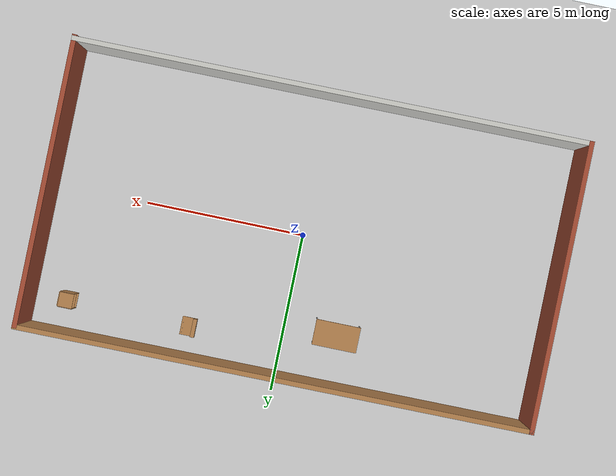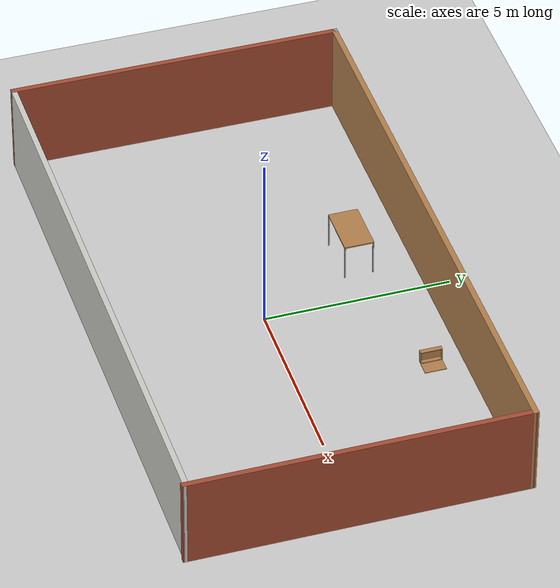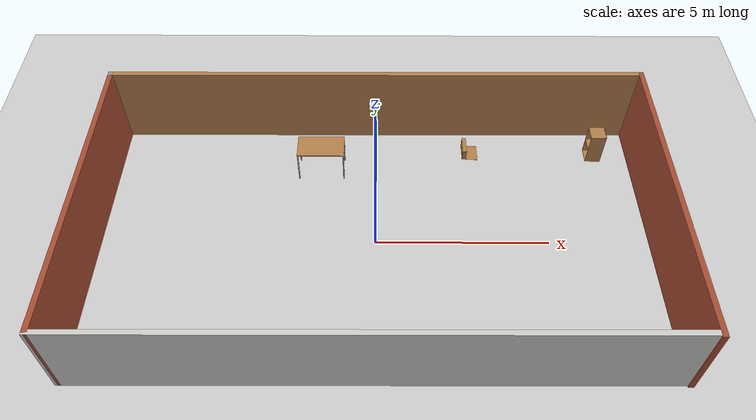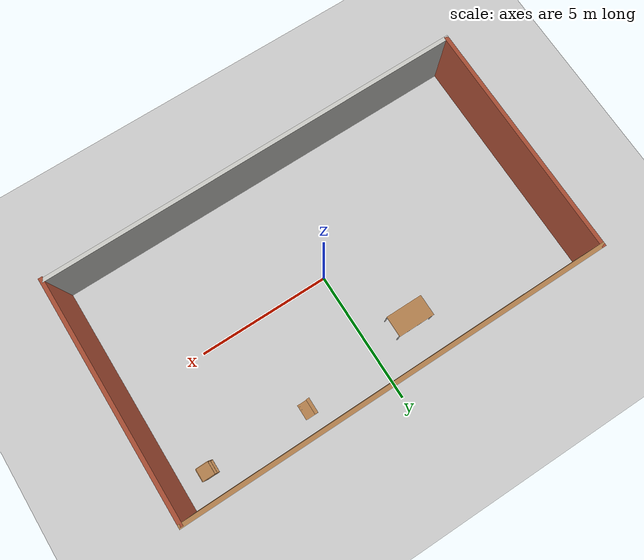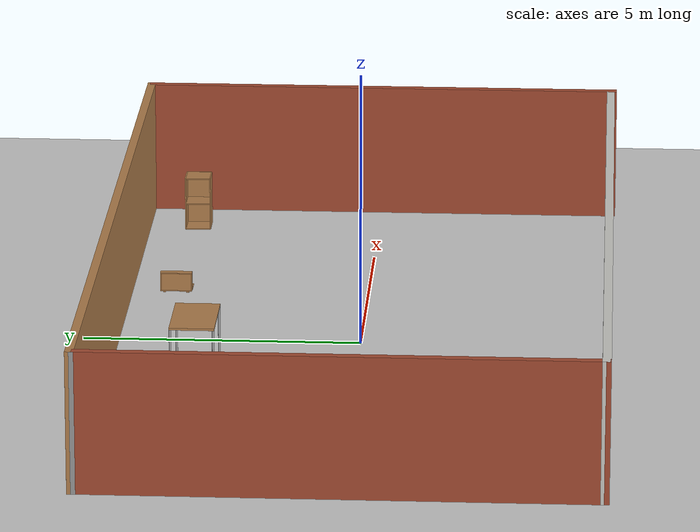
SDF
<sdf version="1.6">
 <world name="default">
  <light name="sun" type="directional">
   <pose>0 0 15 0 -0 0</pose>
   <diffuse>1 1 1 1</diffuse>
   <specular>0.1 0.1 0.1 1</specular>
   <attenuation>
    <range>1000</range>
    <constant>0.9</constant>
    <linear>0.01</linear>
    <quadratic>0.001</quadratic>
   </attenuation>
   <direction>-0.5 0.5 -1</direction>
  </light>
  <model name="ground_plane">
   <static>1</static>
   <link name="link">
    <collision name="collision">
     <geometry><plane><normal>0 0 1</normal><size>100 100</size></plane></geometry>
     <surface><friction><ode><mu>100</mu><mu2>50</mu2></ode></friction></surface>
    </collision>
    <visual name="visual">
     <cast_shadows>0</cast_shadows>
     <geometry><plane><normal>0 0 1</normal><size>100 100</size></plane></geometry>
     <material>
      <script><uri>file://media/materials/scripts/gazebo.material</uri><name>Gazebo/Grey</name></script>
     </material>
    </visual>
   </link>
  </model>
  <gravity>0 0 -9.8</gravity>
  <magnetic_field>6e-06 2.3e-05 -4.2e-05</magnetic_field>
  <atmosphere type="adiabatic"/>
  <physics name="default_physics" default="0" type="ode">
   <max_step_size>0.001</max_step_size>
   <real_time_factor>1</real_time_factor>
   <real_time_update_rate>1000</real_time_update_rate>
  </physics>
  <scene><ambient>0.4 0.4 0.4 1</ambient><background>0.7 0.7 0.7 1</background><shadows>1</shadows></scene>
  <spherical_coordinates>
   <surface_model>EARTH_WGS84</surface_model>
   <latitude_deg>0</latitude_deg>
   <longitude_deg>0</longitude_deg>
   <elevation>0</elevation>
   <heading_deg>0</heading_deg>
  </spherical_coordinates>
  <model name="my_cafe">
   <link name="Wall_0">
    <collision name="Wall_0_Collision">
     <geometry><box><size>9 0.15 2.5</size></box></geometry>
     <pose>0 0 1.25 0 -0 0</pose>
    </collision>
    <visual name="Wall_0_Visual">
     <pose>0 0 1.25 0 -0 0</pose>
     <geometry><box><size>9 0.15 2.5</size></box></geometry>
     <material>
      <script><uri>file://media/materials/scripts/gazebo.material</uri><name>Gazebo/Bricks</name></script>
      <ambient>0.435294 0.796078 0.67451 1</ambient>
     </material>
    </visual>
    <pose>-7.93402 -0.031371 0 0 0 -1.5708</pose>
   </link>
   <link name="Wall_1">
    <collision name="Wall_1_Collision">
     <geometry><box><size>16.0181 0.15 2.5</size></box></geometry>
     <pose>0 0 1.25 0 -0 0</pose>
    </collision>
    <visual name="Wall_1_Visual">
     <pose>0 0 1.25 0 -0 0</pose>
     <geometry><box><size>16.0181 0.15 2.5</size></box></geometry>
     <material>
      <script><uri>file://media/materials/scripts/gazebo.material</uri><name>Gazebo/CeilingTiled</name></script>
      <ambient>0.996078 0.47451 0.0196078 1</ambient>
     </material>
    </visual>
    <pose>0 -4.425 0 0 -0 0.003954</pose>
   </link>
   <link name="Wall_2">
    <collision name="Wall_2_Collision">
     <geometry><box><size>9 0.15 2.5</size></box></geometry>
     <pose>0 0 1.25 0 -0 0</pose>
    </collision>
    <visual name="Wall_2_Visual">
     <pose>0 0 1.25 0 -0 0</pose>
     <geometry><box><size>9 0.15 2.5</size></box></geometry>
     <material>
      <script><uri>file://media/materials/scripts/gazebo.material</uri><name>Gazebo/Bricks</name></script>
      <ambient>0.435294 0.796078 0.67451 1</ambient>
     </material>
    </visual>
    <pose>7.93002 -0.009315 0 0 -0 1.5717</pose>
   </link>
   <link name="Wall_3">
    <collision name="Wall_3_Collision">
     <geometry><box><size>16.0101 0.15 2.5</size></box></geometry>
     <pose>0 0 1.25 0 -0 0</pose>
    </collision>
    <visual name="Wall_3_Visual">
     <pose>0 0 1.25 0 -0 0</pose>
     <geometry><box><size>16.0101 0.15 2.5</size></box></geometry>
     <material>
      <script><uri>file://media/materials/scripts/gazebo.material</uri><name>Gazebo/Wood</name></script>
      <ambient>0.435294 0.796078 0.67451 1</ambient>
     </material>
    </visual>
    <pose>-0.004 4.425 0 0 0 -3.13764</pose>
   </link>
   <link name="Wall_4">
    <collision name="Wall_4_Collision">
     <geometry><box><size>0.15 0.15 2.5</size></box></geometry>
     <pose>0 0 1.25 0 -0 0</pose>
    </collision>
    <visual name="Wall_4_Visual">
     <pose>0 0 1.25 0 -0 0</pose>
     <geometry><box><size>0.15 0.15 2.5</size></box></geometry>
     <material>
      <script><uri>file://media/materials/scripts/gazebo.material</uri><name>Gazebo/Grey</name></script>
      <ambient>1 1 1 1</ambient>
     </material>
    </visual>
    <pose>-7.93402 4.39363 0 0 -0 0</pose>
   </link>
   <static>1</static>
  </model>
  <model name="wooden_case">
   <link name="base">
    <pose>0 0 0.024 0 -0 0</pose>
    <inertial>
     <pose>-0.022184 0 0.171592 0 -0 0</pose>
     <mass>3.96264</mass>
     <inertia>
      <ixx>0.213536</ixx>
      <ixy>0</ixy>
      <ixz>0.000779377</ixz>
      <iyy>0.0708943</iyy>
      <iyz>0</iyz>
      <izz>0.154604</izz>
     </inertia>
    </inertial>
    <collision name="collision_back">
     <pose>-0.053975 0 0.1778 0 -0 0</pose>
     <geometry><box><size>0.01905 0.5461 0.3175</size></box></geometry>
     <surface>
      <contact>
       <poissons_ratio>0.347</poissons_ratio>
       <elastic_modulus>8.8e+09</elastic_modulus>
       <ode><kp>100000</kp><kd>100</kd><max_vel>100</max_vel><min_depth>0.001</min_depth></ode>
      </contact>
      <friction>
       <torsional>
        <coefficient>1</coefficient>
        <use_patch_radius>0</use_patch_radius>
        <surface_radius>0.01</surface_radius>
       </torsional>
      </friction>
     </surface>
    </collision>
    <visual name="visual_back">
     <pose>-0.053975 0 0.1778 0 -0 0</pose>
     <geometry><box><size>0.01905 0.5461 0.3175</size></box></geometry>
     <material>
      <script><uri>file://media/materials/scripts/gazebo.material</uri><name>Gazebo/Wood</name></script>
     </material>
    </visual>
    <collision name="collision_bottom">
     <pose>0 0 0.009525 0 -0 0</pose>
     <geometry><box><size>0.127 0.5842 0.01905</size></box></geometry>
     <surface>
      <contact>
       <poissons_ratio>0.347</poissons_ratio>
       <elastic_modulus>8.8e+09</elastic_modulus>
       <ode><kp>100000</kp><kd>100</kd><max_vel>100</max_vel><min_depth>0.001</min_depth></ode>
      </contact>
      <friction>
       <torsional>
        <coefficient>1</coefficient>
        <use_patch_radius>0</use_patch_radius>
        <surface_radius>0.01</surface_radius>
       </torsional>
      </friction>
     </surface>
    </collision>
    <visual name="visual_bottom">
     <pose>0 0 0.009525 0 -0 0</pose>
     <geometry><box><size>0.127 0.5842 0.01905</size></box></geometry>
     <material>
      <script><uri>file://media/materials/scripts/gazebo.material</uri><name>Gazebo/Wood</name></script>
     </material>
    </visual>
    <collision name="collision_top">
     <pose>0 0 0.346075 0 -0 0</pose>
     <geometry><box><size>0.127 0.5842 0.01905</size></box></geometry>
     <surface>
      <contact>
       <poissons_ratio>0.347</poissons_ratio>
       <elastic_modulus>8.8e+09</elastic_modulus>
       <ode><kp>100000</kp><kd>100</kd><max_vel>100</max_vel><min_depth>0.001</min_depth></ode>
      </contact>
      <friction>
       <torsional>
        <coefficient>1</coefficient>
        <use_patch_radius>0</use_patch_radius>
        <surface_radius>0.01</surface_radius>
       </torsional>
      </friction>
     </surface>
    </collision>
    <visual name="visual_top">
     <pose>0 0 0.346075 0 -0 0</pose>
     <geometry><box><size>0.127 0.5842 0.01905</size></box></geometry>
     <material>
      <script><uri>file://media/materials/scripts/gazebo.material</uri><name>Gazebo/Wood</name></script>
     </material>
    </visual>
    <collision name="collision_left">
     <pose>0 -0.282575 0.1778 0 -0 0</pose>
     <geometry><box><size>0.127 0.01905 0.3175</size></box></geometry>
     <surface>
      <contact>
       <poissons_ratio>0.347</poissons_ratio>
       <elastic_modulus>8.8e+09</elastic_modulus>
       <ode><kp>100000</kp><kd>100</kd><max_vel>100</max_vel><min_depth>0.001</min_depth></ode>
      </contact>
      <friction>
       <torsional>
        <coefficient>1</coefficient>
        <use_patch_radius>0</use_patch_radius>
        <surface_radius>0.01</surface_radius>
       </torsional>
      </friction>
     </surface>
    </collision>
    <visual name="visual_left">
     <pose>0 -0.282575 0.1778 0 -0 0</pose>
     <geometry><box><size>0.127 0.01905 0.3175</size></box></geometry>
     <material>
      <script><uri>file://media/materials/scripts/gazebo.material</uri><name>Gazebo/Wood</name></script>
     </material>
    </visual>
    <collision name="collision_right">
     <pose>0 0.282575 0.1778 0 -0 0</pose>
     <geometry><box><size>0.127 0.01905 0.3175</size></box></geometry>
     <surface>
      <contact>
       <poissons_ratio>0.347</poissons_ratio>
       <elastic_modulus>8.8e+09</elastic_modulus>
       <ode><kp>100000</kp><kd>100</kd><max_vel>100</max_vel><min_depth>0.001</min_depth></ode>
      </contact>
      <friction>
       <torsional>
        <coefficient>1</coefficient>
        <use_patch_radius>0</use_patch_radius>
        <surface_radius>0.01</surface_radius>
       </torsional>
      </friction>
     </surface>
    </collision>
    <visual name="visual_right">
     <pose>0 0.282575 0.1778 0 -0 0</pose>
     <geometry><box><size>0.127 0.01905 0.3175</size></box></geometry>
     <material>
      <script><uri>file://media/materials/scripts/gazebo.material</uri><name>Gazebo/Wood</name></script>
     </material>
    </visual>
    <collision name="collision_block_left">
     <pose>0.0095 -0.2151 -0.012 0 -0 0</pose>
     <geometry><box><size>0.108 0.05 0.024</size></box></geometry>
     <surface>
      <contact>
       <poissons_ratio>0.347</poissons_ratio>
       <elastic_modulus>8.8e+09</elastic_modulus>
       <ode><kp>100000</kp><kd>100</kd><max_vel>100</max_vel><min_depth>0.001</min_depth></ode>
      </contact>
      <friction>
       <torsional>
        <coefficient>1</coefficient>
        <use_patch_radius>0</use_patch_radius>
        <surface_radius>0.01</surface_radius>
       </torsional>
      </friction>
     </surface>
    </collision>
    <visual name="visual_block_left">
     <pose>0.0095 -0.2151 -0.012 0 -0 0</pose>
     <geometry><box><size>0.108 0.05 0.024</size></box></geometry>
     <material>
      <script><uri>file://media/materials/scripts/gazebo.material</uri><name>Gazebo/Wood</name></script>
     </material>
    </visual>
    <collision name="collision_block_right">
     <pose>0.0095 0.2151 -0.012 0 -0 0</pose>
     <geometry><box><size>0.108 0.05 0.024</size></box></geometry>
     <surface>
      <contact>
       <poissons_ratio>0.347</poissons_ratio>
       <elastic_modulus>8.8e+09</elastic_modulus>
       <ode><kp>100000</kp><kd>100</kd><max_vel>100</max_vel><min_depth>0.001</min_depth></ode>
      </contact>
      <friction>
       <torsional>
        <coefficient>1</coefficient>
        <use_patch_radius>0</use_patch_radius>
        <surface_radius>0.01</surface_radius>
       </torsional>
      </friction>
     </surface>
    </collision>
    <visual name="visual_block_right">
     <pose>0.0095 0.2151 -0.012 0 -0 0</pose>
     <geometry><box><size>0.108 0.05 0.024</size></box></geometry>
     <material>
      <script><uri>file://media/materials/scripts/gazebo.material</uri><name>Gazebo/Wood</name></script>
     </material>
    </visual>
   </link>
   <link name="lid">
    <pose>0.243775 0 0.009525 0 -0 0</pose>
    <inertial>
     <mass>1.97874</mass>
     <inertia>
      <ixx>0.0563367</ixx>
      <ixy>0</ixy>
      <ixz>0</ixz>
      <iyy>0.020911</iyy>
      <iyz>0</iyz>
      <izz>0.0771281</izz>
     </inertia>
    </inertial>
    <collision name="collision">
     <geometry><box><size>0.3556 0.5842 0.01905</size></box></geometry>
     <surface>
      <contact>
       <poissons_ratio>0.347</poissons_ratio>
       <elastic_modulus>8.8e+09</elastic_modulus>
       <ode><kp>100000</kp><kd>100</kd><max_vel>100</max_vel><min_depth>0.001</min_depth></ode>
      </contact>
      <friction>
       <torsional>
        <coefficient>1</coefficient>
        <use_patch_radius>0</use_patch_radius>
        <surface_radius>0.01</surface_radius>
       </torsional>
      </friction>
     </surface>
    </collision>
    <visual name="visual">
     <geometry><box><size>0.3556 0.5842 0.01905</size></box></geometry>
     <material>
      <script><uri>file://media/materials/scripts/gazebo.material</uri><name>Gazebo/Wood</name></script>
     </material>
    </visual>
    <visual name="tee_nut_1">
     <pose>0.122 -0.216 0 0 -0 0</pose>
     <geometry><cylinder><radius>0.00635</radius><length>0.0192405</length></cylinder></geometry>
     <material>
      <script><uri>file://media/materials/scripts/gazebo.material</uri><name>Gazebo/Grey</name></script>
     </material>
    </visual>
    <visual name="tee_nut_2">
     <pose>0.122 -0.088 0 0 -0 0</pose>
     <geometry><cylinder><radius>0.00635</radius><length>0.0192405</length></cylinder></geometry>
     <material>
      <script><uri>file://media/materials/scripts/gazebo.material</uri><name>Gazebo/Grey</name></script>
     </material>
    </visual>
    <visual name="tee_nut_3">
     <pose>0.122 0.088 0 0 -0 0</pose>
     <geometry><cylinder><radius>0.00635</radius><length>0.0192405</length></cylinder></geometry>
     <material>
      <script><uri>file://media/materials/scripts/gazebo.material</uri><name>Gazebo/Grey</name></script>
     </material>
    </visual>
    <visual name="tee_nut_4">
     <pose>0.122 0.216 0 0 -0 0</pose>
     <geometry><cylinder><radius>0.00635</radius><length>0.0192405</length></cylinder></geometry>
     <material>
      <script><uri>file://media/materials/scripts/gazebo.material</uri><name>Gazebo/Grey</name></script>
     </material>
    </visual>
   </link>
   <joint name="lid_hinge" type="revolute">
    <pose>-0.1778 0 0.01905 0 -0 0</pose>
    <parent>base</parent>
    <child>lid</child>
    <axis>
     <xyz>0 1 0</xyz>
     <limit><upper>0.523599</upper><lower>-1.5708</lower></limit>
     <use_parent_model_frame>0</use_parent_model_frame>
     <dynamics><spring_reference>0</spring_reference><spring_stiffness>0</spring_stiffness></dynamics>
    </axis>
   </joint>
   <pose>2.76973 3.55891 -0.001057 0 -0.000429 0</pose>
  </model>
  <model name="table">
   <static>0</static>
   <link name="link">
    <collision name="surface">
     <pose>0 0 1 0 -0 0</pose>
     <geometry><box><size>1.5 0.8 0.03</size></box></geometry>
     <surface><friction><ode><mu>0.6</mu><mu2>0.6</mu2></ode></friction></surface>
    </collision>
    <visual name="visual1">
     <pose>0 0 1 0 -0 0</pose>
     <geometry><box><size>1.4 0.8 0.04</size></box></geometry>
     <material>
      <script><uri>file://media/materials/scripts/gazebo.material</uri><name>Gazebo/Wood</name></script>
     </material>
    </visual>
    <collision name="front_left_leg">
     <pose>0.68 0.38 0.5 0 -0 0</pose>
     <geometry><cylinder><radius>0.02</radius><length>1</length></cylinder></geometry>
    </collision>
    <visual name="front_left_leg">
     <pose>0.68 0.38 0.5 0 -0 0</pose>
     <geometry><cylinder><radius>0.02</radius><length>1</length></cylinder></geometry>
     <material>
      <script><uri>file://media/materials/scripts/gazebo.material</uri><name>Gazebo/Grey</name></script>
     </material>
    </visual>
    <collision name="front_right_leg">
     <pose>0.68 -0.38 0.5 0 -0 0</pose>
     <geometry><cylinder><radius>0.02</radius><length>1</length></cylinder></geometry>
    </collision>
    <visual name="front_right_leg">
     <pose>0.68 -0.38 0.5 0 -0 0</pose>
     <geometry><cylinder><radius>0.02</radius><length>1</length></cylinder></geometry>
     <material>
      <script><uri>file://media/materials/scripts/gazebo.material</uri><name>Gazebo/Grey</name></script>
     </material>
    </visual>
    <collision name="back_right_leg">
     <pose>-0.68 -0.38 0.5 0 -0 0</pose>
     <geometry><cylinder><radius>0.02</radius><length>1</length></cylinder></geometry>
    </collision>
    <visual name="back_right_leg">
     <pose>-0.68 -0.38 0.5 0 -0 0</pose>
     <geometry><cylinder><radius>0.02</radius><length>1</length></cylinder></geometry>
     <material>
      <script><uri>file://media/materials/scripts/gazebo.material</uri><name>Gazebo/Grey</name></script>
     </material>
    </visual>
    <collision name="back_left_leg">
     <pose>-0.68 0.38 0.5 0 -0 0</pose>
     <geometry><cylinder><radius>0.02</radius><length>1</length></cylinder></geometry>
    </collision>
    <visual name="back_left_leg">
     <pose>-0.68 0.38 0.5 0 -0 0</pose>
     <geometry><cylinder><radius>0.02</radius><length>1</length></cylinder></geometry>
     <material>
      <script><uri>file://media/materials/scripts/gazebo.material</uri><name>Gazebo/Grey</name></script>
     </material>
    </visual>
    <inertial>
     <inertia><ixx>1</ixx><ixy>0</ixy><ixz>0</ixz><iyy>1</iyy><iyz>0</iyz><izz>1</izz></inertia>
     <mass>1</mass>
    </inertial>
   </link>
   <pose>-1.6487 2.84928 -2e-06 0 -0 0</pose>
  </model>
  <model name="cabinet">
   <static>1</static>
   <link name="cabinet_bottom_plate">
    <inertial>
     <pose>0 0 -1 0 -0 0</pose>
     <inertia><ixx>2.05</ixx><ixy>0</ixy><ixz>0</ixz><iyy>2.05</iyy><iyz>0</iyz><izz>2.05</izz></inertia>
     <mass>25</mass>
    </inertial>
    <collision name="cabinet_bottom_plate_geom">
     <pose>0 0 0.01 0 -0 0</pose>
     <geometry><box><size>0.45 0.45 0.02</size></box></geometry>
    </collision>
    <visual name="cabinet_bottom_plate_geom_visual">
     <pose>0 0 0.01 0 -0 0</pose>
     <geometry><box><size>0.45 0.45 0.02</size></box></geometry>
     <material>
      <script><uri>file://media/materials/scripts/gazebo.material</uri><name>Gazebo/Wood</name></script>
     </material>
    </visual>
    <collision name="cabinet_bottom_plate_geom_cabinet_back_plate">
     <pose>0.235 0 0.51 0 -0 0</pose>
     <geometry><box><size>0.02 0.45 1.02</size></box></geometry>
    </collision>
    <visual name="cabinet_bottom_plate_geom_cabinet_back_plate_visual">
     <pose>0.235 0 0.51 0 -0 0</pose>
     <geometry><box><size>0.02 0.45 1.02</size></box></geometry>
     <material>
      <script><uri>file://media/materials/scripts/gazebo.material</uri><name>Gazebo/Wood</name></script>
     </material>
    </visual>
    <collision name="cabinet_bottom_plate_geom_cabinet_left_plate">
     <pose>0 0.235 0.51 0 -0 0</pose>
     <geometry><box><size>0.45 0.02 1.02</size></box></geometry>
    </collision>
    <visual name="cabinet_bottom_plate_geom_cabinet_left_plate_visual">
     <pose>0 0.235 0.51 0 -0 0</pose>
     <geometry><box><size>0.45 0.02 1.02</size></box></geometry>
     <material>
      <script><uri>file://media/materials/scripts/gazebo.material</uri><name>Gazebo/Wood</name></script>
     </material>
    </visual>
    <collision name="cabinet_bottom_plate_geom_cabinet_middle_plate">
     <pose>0 0 0.51 0 -0 0</pose>
     <geometry><box><size>0.45 0.45 0.02</size></box></geometry>
    </collision>
    <visual name="cabinet_bottom_plate_geom_cabinet_middle_plate_visual">
     <pose>0 0 0.51 0 -0 0</pose>
     <geometry><box><size>0.45 0.45 0.02</size></box></geometry>
     <material>
      <script><uri>file://media/materials/scripts/gazebo.material</uri><name>Gazebo/Wood</name></script>
     </material>
    </visual>
    <collision name="cabinet_bottom_plate_geom_cabinet_right_plate">
     <pose>0 -0.235 0.51 0 -0 0</pose>
     <geometry><box><size>0.45 0.02 1.02</size></box></geometry>
    </collision>
    <visual name="cabinet_bottom_plate_geom_cabinet_right_plate_visual">
     <pose>0 -0.235 0.51 0 -0 0</pose>
     <geometry><box><size>0.45 0.02 1.02</size></box></geometry>
     <material>
      <script><uri>file://media/materials/scripts/gazebo.material</uri><name>Gazebo/Wood</name></script>
     </material>
    </visual>
    <collision name="cabinet_bottom_plate_geom_cabinet_top_plate">
     <pose>0 0 1.01 0 -0 0</pose>
     <geometry><box><size>0.45 0.45 0.02</size></box></geometry>
    </collision>
    <visual name="cabinet_bottom_plate_geom_cabinet_top_plate_visual">
     <pose>0 0 1.01 0 -0 0</pose>
     <geometry><box><size>0.45 0.45 0.02</size></box></geometry>
     <material>
      <script><uri>file://media/materials/scripts/gazebo.material</uri><name>Gazebo/Wood</name></script>
     </material>
    </visual>
   </link>
   <pose>6.78133 3.46639 0 0 -0 0</pose>
  </model>
 </world>
</sdf>
